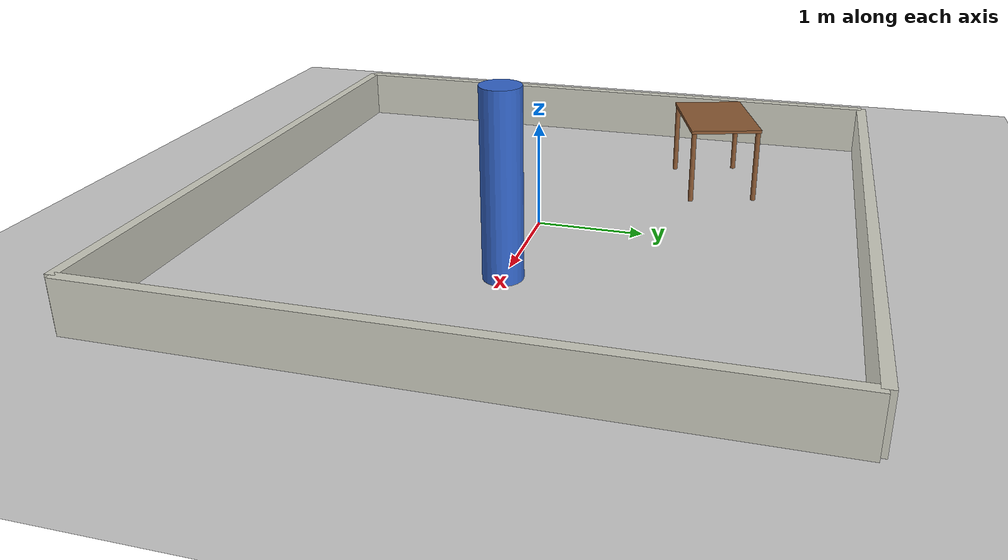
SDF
<?xml version="1.0"?>
<!-- Generado para probar turtlebot_emotion_node: habitación, mesa y persona -->
<sdf version="1.6">
  <world name="emotion_world">
    <include><uri>model://sun</uri></include>
    <include><uri>model://ground_plane</uri></include>
    <physics type="ode">
      <real_time_update_rate>1000.0</real_time_update_rate>
      <max_step_size>0.001</max_step_size>
    </physics>

    <model name="room">
      <static>true</static>
      <pose>0 0 0 0 0 0</pose>
      <link name="n">
        <pose>0 3 0.25 0 0 0</pose>
        <collision name="c"><geometry><box><size>6 0.1 0.5</size></box></geometry></collision>
        <visual name="v"><geometry><box><size>6 0.1 0.5</size></box></geometry>
          <material><ambient>0.8 0.8 0.75 1</ambient><diffuse>0.8 0.8 0.75 1</diffuse></material></visual>
      </link>
      <link name="s">
        <pose>0 -3 0.25 0 0 0</pose>
        <collision name="c"><geometry><box><size>6 0.1 0.5</size></box></geometry></collision>
        <visual name="v"><geometry><box><size>6 0.1 0.5</size></box></geometry>
          <material><ambient>0.8 0.8 0.75 1</ambient><diffuse>0.8 0.8 0.75 1</diffuse></material></visual>
      </link>
      <link name="e">
        <pose>3 0 0.25 0 0 0</pose>
        <collision name="c"><geometry><box><size>0.1 6 0.5</size></box></geometry></collision>
        <visual name="v"><geometry><box><size>0.1 6 0.5</size></box></geometry>
          <material><ambient>0.8 0.8 0.75 1</ambient><diffuse>0.8 0.8 0.75 1</diffuse></material></visual>
      </link>
      <link name="w">
        <pose>-3 0 0.25 0 0 0</pose>
        <collision name="c"><geometry><box><size>0.1 6 0.5</size></box></geometry></collision>
        <visual name="v"><geometry><box><size>0.1 6 0.5</size></box></geometry>
          <material><ambient>0.8 0.8 0.75 1</ambient><diffuse>0.8 0.8 0.75 1</diffuse></material></visual>
      </link>
    </model>

    <model name="table">
      <static>true</static>
      <pose>-1.5 1.5 0 0 0 0.3</pose>
      <link name="leg0">
        <pose>0.47 0.31999999999999995 0.36 0 0 0</pose>
        <collision name="c"><geometry><cylinder><radius>0.025</radius><length>0.72</length></cylinder></geometry></collision>
        <visual name="v"><geometry><cylinder><radius>0.025</radius><length>0.72</length></cylinder></geometry>
          <material><ambient>0.55 0.35 0.2 1</ambient><diffuse>0.55 0.35 0.2 1</diffuse></material></visual>
      </link>
      <link name="leg1">
        <pose>0.47 -0.31999999999999995 0.36 0 0 0</pose>
        <collision name="c"><geometry><cylinder><radius>0.025</radius><length>0.72</length></cylinder></geometry></collision>
        <visual name="v"><geometry><cylinder><radius>0.025</radius><length>0.72</length></cylinder></geometry>
          <material><ambient>0.55 0.35 0.2 1</ambient><diffuse>0.55 0.35 0.2 1</diffuse></material></visual>
      </link>
      <link name="leg2">
        <pose>-0.47 0.31999999999999995 0.36 0 0 0</pose>
        <collision name="c"><geometry><cylinder><radius>0.025</radius><length>0.72</length></cylinder></geometry></collision>
        <visual name="v"><geometry><cylinder><radius>0.025</radius><length>0.72</length></cylinder></geometry>
          <material><ambient>0.55 0.35 0.2 1</ambient><diffuse>0.55 0.35 0.2 1</diffuse></material></visual>
      </link>
      <link name="leg3">
        <pose>-0.47 -0.31999999999999995 0.36 0 0 0</pose>
        <collision name="c"><geometry><cylinder><radius>0.025</radius><length>0.72</length></cylinder></geometry></collision>
        <visual name="v"><geometry><cylinder><radius>0.025</radius><length>0.72</length></cylinder></geometry>
          <material><ambient>0.55 0.35 0.2 1</ambient><diffuse>0.55 0.35 0.2 1</diffuse></material></visual>
      </link>
      <link name="top">
        <pose>0 0 0.735 0 0 0</pose>
        <collision name="c"><geometry><box><size>1.0 0.7 0.03</size></box></geometry></collision>
        <visual name="v"><geometry><box><size>1.0 0.7 0.03</size></box></geometry>
          <material><ambient>0.55 0.35 0.2 1</ambient><diffuse>0.55 0.35 0.2 1</diffuse></material></visual>
      </link>
    </model>

    <model name="person">
      <static>true</static>
      <pose>1.2 0 0 0 0 0</pose>
      <link name="body">
        <pose>0 0 0.85 0 0 0</pose>
        <collision name="c"><geometry><cylinder><radius>0.18</radius><length>1.7</length></cylinder></geometry></collision>
        <visual name="v"><geometry><cylinder><radius>0.18</radius><length>1.7</length></cylinder></geometry>
          <material><ambient>0.2 0.4 0.8 1</ambient><diffuse>0.2 0.4 0.8 1</diffuse></material></visual>
      </link>
    </model>
  </world>
</sdf>
